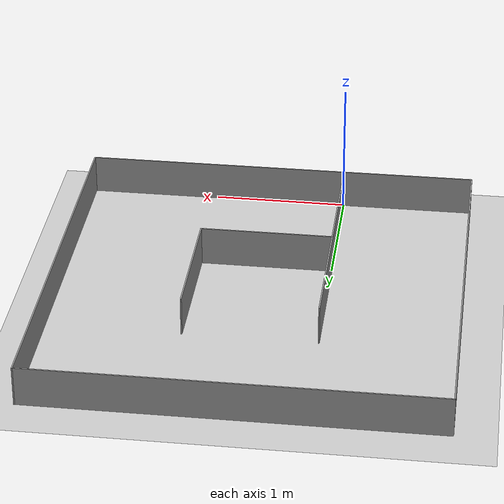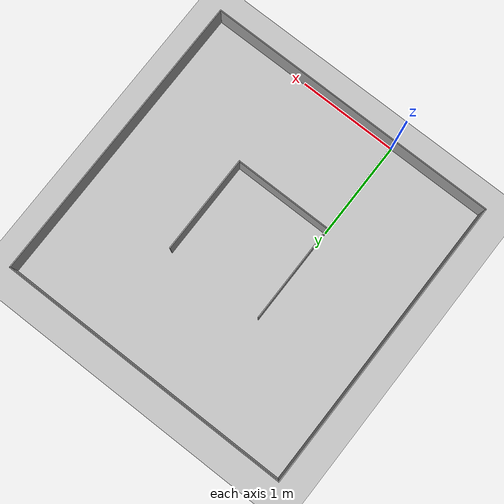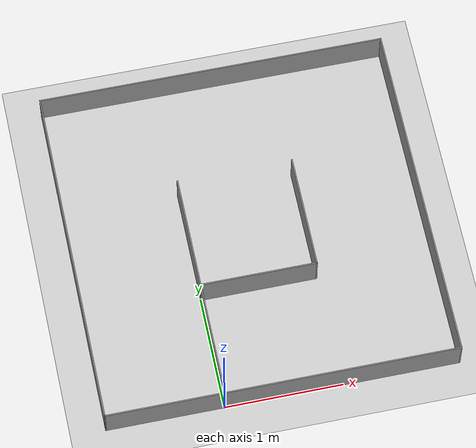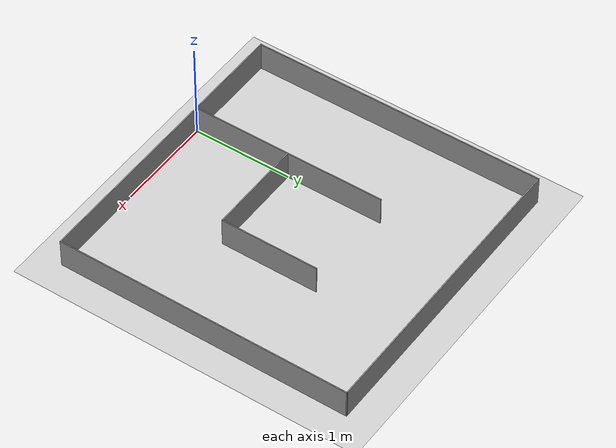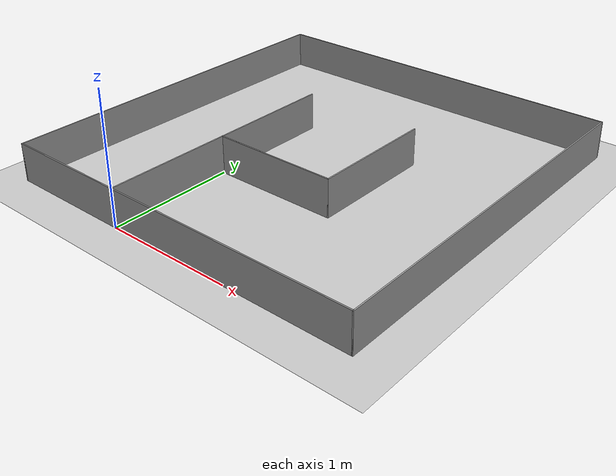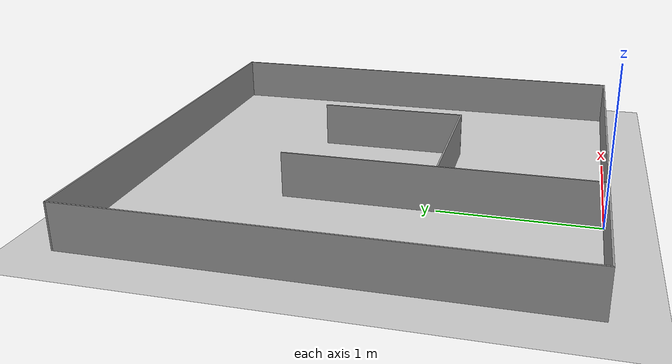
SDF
<sdf version="1.4">
  <world name="default">

    <scene>
      <ambient>0.4 0.4 0.4 1</ambient>
      <background>0.7 0.7 0.7 1</background>
      <shadows>true</shadows>
    </scene>

    <!-- A global light source -->
    <include>
      <uri>model://sun</uri>
    </include>

    <!-- A ground plane -->
    <include>
      <uri>model://ground_plane</uri>
    </include>

    <include>
      <uri>model://turtlebot3_maze1</uri>
    </include>

    <physics type="ode">
      <real_time_update_rate>1000.0</real_time_update_rate>
      <max_step_size>0.001</max_step_size>
      <real_time_factor>1</real_time_factor>
      <ode>
        <solver>
          <type>quick</type>
          <iters>150</iters>
          <precon_iters>0</precon_iters>
          <sor>1.400000</sor>
          <use_dynamic_moi_rescaling>1</use_dynamic_moi_rescaling>
        </solver>
        <constraints>
          <cfm>0.00001</cfm>
          <erp>0.2</erp>
          <contact_max_correcting_vel>2000.000000</contact_max_correcting_vel>
          <contact_surface_layer>0.01000</contact_surface_layer>
        </constraints>
      </ode>
    </physics>
  </world>

</sdf>

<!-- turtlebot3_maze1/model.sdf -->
<sdf version='1.7'>
  <model name='Maze1'>
    <pose>0.495 1.495 0 0 -0 0</pose>
    <link name='Wall_0'>
      <collision name='Wall_0_Collision'>
        <geometry>
          <box>
            <size>3 0.01 0.3</size>
          </box>
        </geometry>
        <pose>0 0 0.15 0 -0 0</pose>
      </collision>
      <visual name='Wall_0_Visual'>
        <pose>0 0 0.15 0 -0 0</pose>
        <geometry>
          <box>
            <size>3 0.01 0.3</size>
          </box>
        </geometry>
        <material>
          <script>
            <uri>file://media/materials/scripts/gazebo.material</uri>
            <name>Gazebo/Grey</name>
          </script>
          <ambient>1 1 1 1</ambient>
        </material>
        <meta>
          <layer>0</layer>
        </meta>
      </visual>
      <pose>0 -1.495 0 0 -0 0</pose>
    </link>
    <link name='Wall_2'>
      <collision name='Wall_2_Collision'>
        <geometry>
          <box>
            <size>3 0.01 0.3</size>
          </box>
        </geometry>
        <pose>0 0 0.15 0 -0 0</pose>
      </collision>
      <visual name='Wall_2_Visual'>
        <pose>0 0 0.15 0 -0 0</pose>
        <geometry>
          <box>
            <size>3 0.01 0.3</size>
          </box>
        </geometry>
        <material>
          <script>
            <uri>file://media/materials/scripts/gazebo.material</uri>
            <name>Gazebo/Grey</name>
          </script>
          <ambient>1 1 1 1</ambient>
        </material>
        <meta>
          <layer>0</layer>
        </meta>
      </visual>
      <pose>1.495 -0 0 0 -0 1.5708</pose>
    </link>
    <link name='Wall_3'>
      <collision name='Wall_3_Collision'>
        <geometry>
          <box>
            <size>3 0.01 0.3</size>
          </box>
        </geometry>
        <pose>0 0 0.15 0 -0 0</pose>
      </collision>
      <visual name='Wall_3_Visual'>
        <pose>0 0 0.15 0 -0 0</pose>
        <geometry>
          <box>
            <size>3 0.01 0.3</size>
          </box>
        </geometry>
        <material>
          <script>
            <uri>file://media/materials/scripts/gazebo.material</uri>
            <name>Gazebo/Grey</name>
          </script>
          <ambient>1 1 1 1</ambient>
        </material>
        <meta>
          <layer>0</layer>
        </meta>
      </visual>
      <pose>0 1.495 0 0 -0 3.14159</pose>
    </link>
    <link name='Wall_4'>
      <collision name='Wall_4_Collision'>
        <geometry>
          <box>
            <size>3 0.01 0.3</size>
          </box>
        </geometry>
        <pose>0 0 0.15 0 -0 0</pose>
      </collision>
      <visual name='Wall_4_Visual'>
        <pose>0 0 0.15 0 -0 0</pose>
        <geometry>
          <box>
            <size>3 0.01 0.3</size>
          </box>
        </geometry>
        <material>
          <script>
            <uri>file://media/materials/scripts/gazebo.material</uri>
            <name>Gazebo/Grey</name>
          </script>
          <ambient>1 1 1 1</ambient>
        </material>
        <meta>
          <layer>0</layer>
        </meta>
      </visual>
      <pose>-1.495 -0 0 0 -0 -1.5708</pose>
    </link>
    <link name='Wall_6'>
      <collision name='Wall_6_Collision'>
        <geometry>
          <box>
            <size>2 0.01 0.3</size>
          </box>
        </geometry>
        <pose>0 0 0.15 0 -0 0</pose>
      </collision>
      <visual name='Wall_6_Visual'>
        <pose>0 0 0.15 0 -0 0</pose>
        <geometry>
          <box>
            <size>2 0.01 0.3</size>
          </box>
        </geometry>
        <material>
          <script>
            <uri>file://media/materials/scripts/gazebo.material</uri>
            <name>Gazebo/Grey</name>
          </script>
          <ambient>1 1 1 1</ambient>
        </material>
        <meta>
          <layer>0</layer>
        </meta>
      </visual>
      <pose>-0.495 -0.5 0 0 -0 1.5708</pose>
    </link>
    <link name='Wall_8'>
      <collision name='Wall_8_Collision'>
        <geometry>
          <box>
            <size>1 0.01 0.3</size>
          </box>
        </geometry>
        <pose>0 0 0.15 0 -0 0</pose>
      </collision>
      <visual name='Wall_8_Visual'>
        <pose>0 0 0.15 0 -0 0</pose>
        <geometry>
          <box>
            <size>1 0.01 0.3</size>
          </box>
        </geometry>
        <material>
          <script>
            <uri>file://media/materials/scripts/gazebo.material</uri>
            <name>Gazebo/Grey</name>
          </script>
          <ambient>1 1 1 1</ambient>
        </material>
        <meta>
          <layer>0</layer>
        </meta>
      </visual>
      <pose>0 -0.495 0 0 -0 0</pose>
    </link>
    <link name='Wall_9'>
      <collision name='Wall_9_Collision'>
        <geometry>
          <box>
            <size>1 0.01 0.3</size>
          </box>
        </geometry>
        <pose>0 0 0.15 0 -0 0</pose>
      </collision>
      <visual name='Wall_9_Visual'>
        <pose>0 0 0.15 0 -0 0</pose>
        <geometry>
          <box>
            <size>1 0.01 0.3</size>
          </box>
        </geometry>
        <material>
          <script>
            <uri>file://media/materials/scripts/gazebo.material</uri>
            <name>Gazebo/Grey</name>
          </script>
          <ambient>1 1 1 1</ambient>
        </material>
        <meta>
          <layer>0</layer>
        </meta>
      </visual>
      <pose>0.495 -0 0 0 -0 1.5708</pose>
    </link>
    <static>1</static>
  </model>
</sdf>
